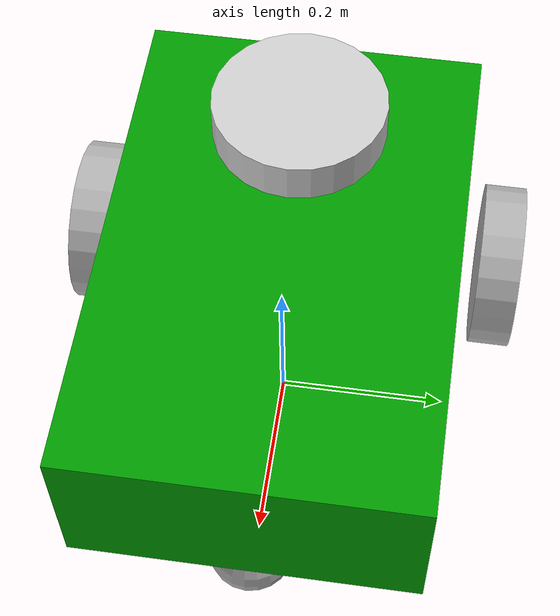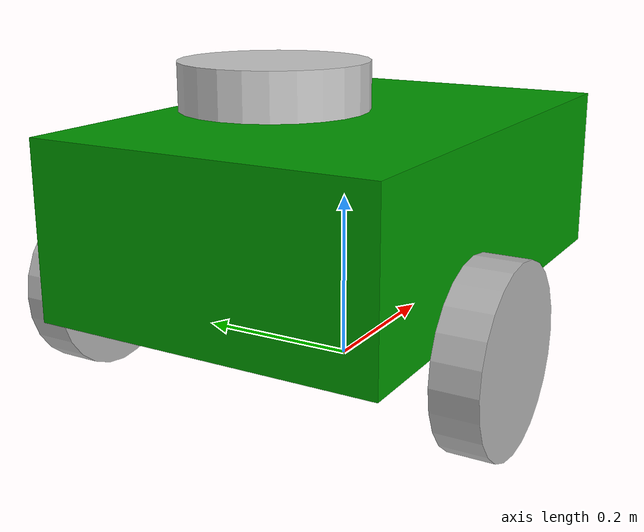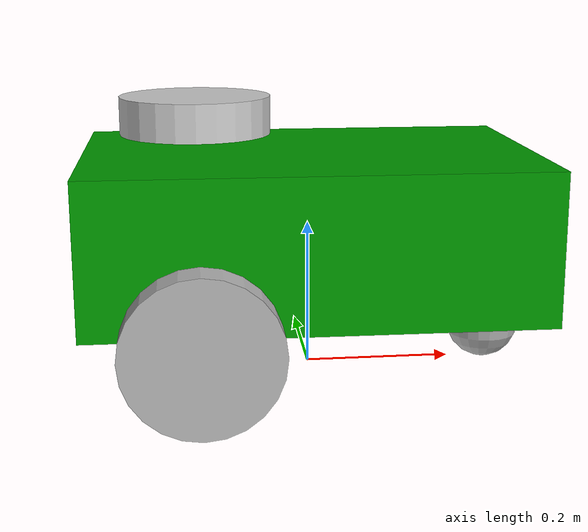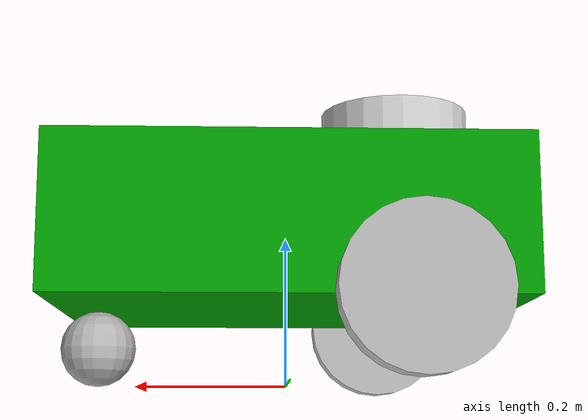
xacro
<?xml version="1.0"?>
<robot name="my_robot" xmlns:xacro="http://www.ros.org/wiki/xacro">

  <!-- ================= XACRO VARIABLES ================= -->
  <xacro:property name="base_length"  value="0.6"/>
  <xacro:property name="base_width"   value="0.4"/>
  <xacro:property name="base_height"  value="0.2"/>
  <xacro:property name="wheel_radius" value="0.1"/>
  <xacro:property name="wheel_length" value="0.05"/>

  <!-- ================= INERTIA MACROS ================= -->
  <xacro:macro name="box_inertia" params="mass lx ly lz xyz rpy">
    <inertial>
      <origin xyz="${xyz}" rpy="${rpy}"/>
      <mass value="${mass}"/>
      <inertia
        ixx="${(mass / 12.0) * (ly * ly + lz * lz)}"
        ixy="0" ixz="0"
        iyy="${(mass / 12.0) * (lx * lx + lz * lz)}"
        iyz="0"
        izz="${(mass / 12.0) * (lx * lx + ly * ly)}"/>
    </inertial>
  </xacro:macro>

  <xacro:macro name="cylinder_inertia" params="mass h r xyz rpy">
    <inertial>
      <origin xyz="${xyz}" rpy="${rpy}"/>
      <mass value="${mass}"/>
      <inertia
        ixx="${(mass / 12.0) * (3.0 * r * r + h * h)}"
        ixy="0" ixz="0"
        iyy="${(mass / 12.0) * (3.0 * r * r + h * h)}"
        iyz="0"
        izz="${(mass / 2.0) * (r * r)}"/>
    </inertial>
  </xacro:macro>

  <xacro:macro name="sphere_inertia" params="mass r xyz rpy">
    <inertial>
      <origin xyz="${xyz}" rpy="${rpy}"/>
      <mass value="${mass}"/>
      <inertia
        ixx="${(mass * 2.0 / 5.0) * (r * r)}"
        ixy="0" ixz="0"
        iyy="${(mass * 2.0 / 5.0) * (r * r)}"
        iyz="0"
        izz="${(mass * 2.0 / 5.0) * (r * r)}"/>
    </inertial>
  </xacro:macro>

  <!-- ================= MATERIALS ================= -->
  <material name="green">
    <color rgba="0 0.6 0 1"/>
  </material>

  <material name="white">
    <color rgba="0.8 0.8 0.8 1"/>
  </material>

  <material name="gray">
    <color rgba="0.7 0.7 0.7 1"/>
  </material>

  <!-- ================= BASE FOOTPRINT ================= -->
  <link name="base_footprint"/>

  <!-- ================= BASE LINK ================= -->
  <link name="base_link">
    <visual>
      <geometry>
        <box size="${base_length} ${base_width} ${base_height}"/>
      </geometry>
      <origin xyz="0 0 ${base_height/2.0}" rpy="0 0 0"/>
      <material name="green"/>
    </visual>

    <collision>
      <geometry>
        <box size="${base_length} ${base_width} ${base_height}"/>
      </geometry>
      <origin xyz="0 0 ${base_height/2.0}" rpy="0 0 0"/>
    </collision>

    <xacro:box_inertia
      mass="5.0"
      lx="${base_length}"
      ly="${base_width}"
      lz="${base_height}"
      xyz="0 0 ${base_height/2.0}"
      rpy="0 0 0"/>
  </link>

  <joint name="base_joint" type="fixed">
    <parent link="base_footprint"/>
    <child link="base_link"/>
    <origin xyz="0 0 0.1" rpy="0 0 0"/>
  </joint>

  <!-- ================= LIDAR ================= -->
  <link name="lidar">
    <visual>
      <geometry>
        <cylinder radius="0.1" length="0.05"/>
      </geometry>
      <material name="white"/>
    </visual>

    <collision>
      <geometry>
        <cylinder radius="0.1" length="0.05"/>
      </geometry>
    </collision>

    <xacro:cylinder_inertia
      mass="1.0"
      h="0.05"
      r="0.1"
      xyz="0 0 0"
      rpy="0 0 0"/>
  </link>

  <joint name="base_lidar_joint" type="fixed">
    <parent link="base_link"/>
    <child link="lidar"/>
    <origin xyz="-0.15 0 0.25" rpy="0 0 0"/>
  </joint>

  <!-- ================= LEFT WHEEL ================= -->
  <link name="left_wheel">
    <visual>
      <geometry>
        <cylinder radius="${wheel_radius}" length="${wheel_length}"/>
      </geometry>
      <material name="gray"/>
    </visual>

    <collision>
      <geometry>
        <cylinder radius="${wheel_radius}" length="${wheel_length}"/>
      </geometry>
    </collision>

    <xacro:cylinder_inertia
      mass="1.0"
      h="${wheel_length}"
      r="${wheel_radius}"
      xyz="0 0 0"
      rpy="0 0 0"/>
  </link>

  <joint name="base_left_wheel_joint" type="continuous">
    <parent link="base_link"/>
    <child link="left_wheel"/>
    <origin xyz="-0.15 0.25 0" rpy="${-pi / 2.0} 0 0"/>
    <axis xyz="0 0 1"/>
  </joint>

  <!-- ================= RIGHT WHEEL ================= -->
  <link name="right_wheel">
    <visual>
      <geometry>
        <cylinder radius="${wheel_radius}" length="${wheel_length}"/>
      </geometry>
      <material name="gray"/>
    </visual>

    <collision>
      <geometry>
        <cylinder radius="${wheel_radius}" length="${wheel_length}"/>
      </geometry>
    </collision>

    <xacro:cylinder_inertia
      mass="1.0"
      h="${wheel_length}"
      r="${wheel_radius}"
      xyz="0 0 0"
      rpy="0 0 0"/>
  </link>

  <joint name="base_right_wheel_joint" type="continuous">
    <parent link="base_link"/>
    <child link="right_wheel"/>
    <origin xyz="-0.15 -0.25 0" rpy="${-pi / 2.0} 0 0"/>
    <axis xyz="0 0 1"/>
  </joint>

  <!-- ================= CASTER ================= -->
  <link name="caster_wheel">
    <visual>
      <geometry>
        <sphere radius="${wheel_radius/2.0}"/>
      </geometry>
      <material name="gray"/>
    </visual>

    <collision>
      <geometry>
        <sphere radius="${wheel_radius/2.0}"/>
      </geometry>
    </collision>

    <xacro:sphere_inertia
      mass="2.0"
      r="${wheel_radius/2.0}"
      xyz="0 0 0"
      rpy="0 0 0"/>
  </link>

  <joint name="base_caster_wheel_joint" type="fixed">
    <parent link="base_link"/>
    <child link="caster_wheel"/>
    <origin xyz="0.25 0 -0.05" rpy="0 0 0"/>
  </joint>

  <!-- ================= GAZEBO MATERIALS ================= -->
  <gazebo reference="base_link">
    <material>Gazebo/Green</material>
  </gazebo>

  <gazebo reference="left_wheel">
    <material>Gazebo/Grey</material>
  </gazebo>

  <gazebo reference="right_wheel">
    <material>Gazebo/Grey</material>
  </gazebo>

  <gazebo reference="caster_wheel">
    <material>Gazebo/Grey</material>
  </gazebo>

  <gazebo reference="lidar">
    <material>Gazebo/White</material>
  </gazebo>

  <!-- ================= DIFF DRIVE PLUGIN ================= -->

  <gazebo>
    <plugin name="diff_drive_controller"
      filename="libgazebo_ros_diff_drive.so">

      <!-- Update rate in Hz -->
      <update_rate>50</update_rate>

      <!-- Wheels -->
      <left_joint>base_left_wheel_joint</left_joint>
      <right_joint>base_right_wheel_joint</right_joint>

      <!-- Kinematics -->
      <wheel_separation>0.4</wheel_separation>
      <wheel_diameter>0.2</wheel_diameter>

      <!-- Output -->
      <publish_odom>true</publish_odom>
      <publish_odom_tf>true</publish_odom_tf>
      <publish_wheel_tf>true</publish_wheel_tf>

      <odometry_topic>odom</odometry_topic>
      <odometry_frame>odom</odometry_frame>
      <robot_base_frame>base_footprint</robot_base_frame>

      <!-- Input -->
      <command_topic>cmd_vel</command_topic>

    </plugin>
  </gazebo>

</robot>
